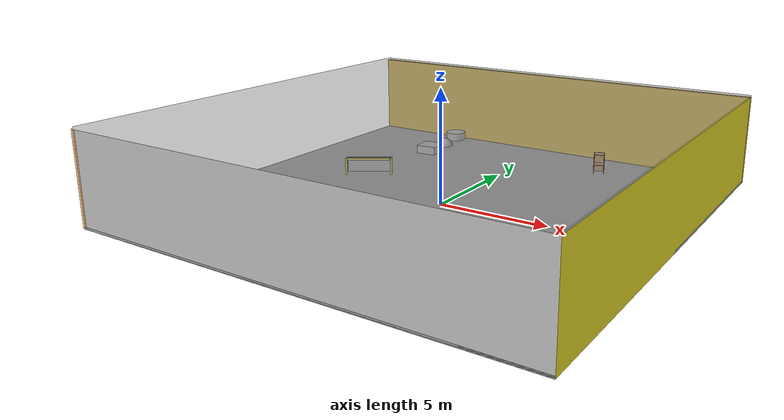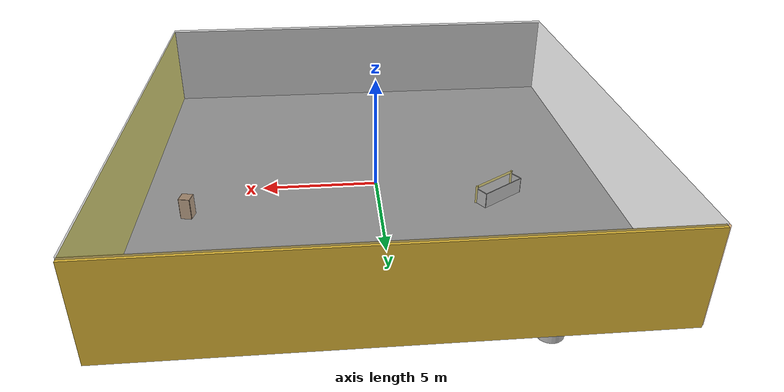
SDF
<sdf version="1.4">
 <world name="default">
  <physics type="ode">
   <max_step_size>0.001</max_step_size>
   <real_time_factor>1</real_time_factor>
   <real_time_update_rate>1000</real_time_update_rate>
   <gravity>0 0 -9.8</gravity>
  </physics>
  <scene><ambient>0.4 0.4 0.4 1</ambient><background>0.7 0.7 0.7 1</background><shadows>1</shadows></scene>
  <model name="Surrounding">
   <static>1</static>
   <link name="Ceiling">
    <collision name="Ceiling_Collision"><geometry><box><size>20 20 0.1</size></box></geometry></collision>
    <visual name="Ceiling_Visual">
     <geometry><box><size>20 20 0.1</size></box></geometry>
     <material>
      <script><uri>file://media/materials/scripts/gazebo.material</uri><name>Gazebo/GreyTransparent</name></script>
     </material>
    </visual>
    <pose>0 0 4.05 0 0 0</pose>
   </link>
   <link name="Wall_South">
    <collision name="Wall_South_Collision">
     <geometry><box><size>20 0 4</size></box></geometry>
     <pose>0 0 2 0 -0 0</pose>
    </collision>
    <visual name="Wall_South_Visual">
     <pose>0 0 2 0 -0 0</pose>
     <geometry><box><size>20 0 4</size></box></geometry>
     <material>
      <script><uri>file://media/materials/scripts/gazebo.material</uri><name>Gazebo/CloudySky</name></script>
     </material>
    </visual>
    <velocity_decay><linear>0</linear><angular>0</angular></velocity_decay>
    <pose>0 -10 0 0 -0 0</pose>
   </link>
   <link name="Wall_East">
    <collision name="Wall_21_Collision">
     <geometry><box><size>20 0 4</size></box></geometry>
     <pose>0 0 2 0 -0 0</pose>
    </collision>
    <visual name="Wall_21_Visual">
     <pose>0 0 2 0 -0 0</pose>
     <geometry><box><size>20 0 4</size></box></geometry>
     <material>
      <script><uri>file://media/materials/scripts/gazebo.material</uri><name>Gazebo/YellowGlow</name></script>
     </material>
    </visual>
    <velocity_decay><linear>0</linear><angular>0</angular></velocity_decay>
    <pose>10 0 0 0 -0 1.5708</pose>
   </link>
   <link name="Wall_North">
    <collision name="Wall_22_Collision">
     <geometry><box><size>20 0.2 4</size></box></geometry>
     <pose>0 0 2 0 -0 0</pose>
    </collision>
    <visual name="Wall_22_Visual">
     <pose>0 0 2 0 -0 0</pose>
     <geometry><box><size>20 0.2 4</size></box></geometry>
     <material>
      <script><uri>file://media/materials/scripts/gazebo.material</uri><name>Gazebo/Gold</name></script>
     </material>
    </visual>
    <velocity_decay><linear>0</linear><angular>0</angular></velocity_decay>
    <pose>0 10 0 0 -0 0</pose>
   </link>
   <link name="Wall_West">
    <collision name="Wall_23_Collision">
     <geometry><box><size>20 0.2 4</size></box></geometry>
     <pose>0 0 2 0 -0 0</pose>
    </collision>
    <visual name="Wall_23_Visual">
     <pose>0 0 2 0 -0 0</pose>
     <geometry><box><size>20 0.2 4</size></box></geometry>
     <material>
      <script>
       <uri>file://media/materials/scripts/gazebo.material</uri>
       <name>Gazebo/OrangeTransparent</name>
      </script>
     </material>
    </visual>
    <velocity_decay><linear>0</linear><angular>0</angular></velocity_decay>
    <pose>-10 0 0 0 0 -1.5708</pose>
   </link>
   <link name="Ground_link">
    <collision name="collision">
     <pose>0 0 .05 0 -0 0</pose>
     <geometry><box><size>20 20 0.1</size></box></geometry>
    </collision>
    <visual name="visual">
     <pose>0 0 .05 0 -0 0</pose>
     <geometry><box><size>20 20 0.1</size></box></geometry>
     <material>
      <script><uri>file://media/materials/scripts/gazebo.material</uri><name>Gazebo/GreyGradientSky</name></script>
     </material>
    </visual>
   </link>
   <static>1</static>
  </model>
  <spherical_coordinates>
   <surface_model>EARTH_WGS84</surface_model>
   <latitude_deg>0</latitude_deg>
   <longitude_deg>0</longitude_deg>
   <elevation>0</elevation>
   <heading_deg>0</heading_deg>
  </spherical_coordinates>
  <light name="lightball_0" type="diffuse">
   <diffuse>0.8 0.8 0.8 1</diffuse>
   <specular>0.2 0.2 0.2 1</specular>
   <attenuation>
    <range>100</range>
    <constant>0.7</constant>
    <linear>0.01</linear>
    <quadratic>0.001</quadratic>
   </attenuation>
   <direction>-0.5 0.1 -0.9</direction>
   <pose>-6.07783386596 0.713040252681 1.15726524368 0 0 0</pose>
  </light>
  <light name="lightball_1" type="diffuse">
   <diffuse>0.8 0.8 0.8 1</diffuse>
   <specular>0.2 0.2 0.2 1</specular>
   <attenuation>
    <range>100</range>
    <constant>0.7</constant>
    <linear>0.01</linear>
    <quadratic>0.001</quadratic>
   </attenuation>
   <direction>-0.5 0.1 -0.9</direction>
   <pose>-9.85723176167 1.44600548624 2.90204634628 0 0 0</pose>
  </light>
  <light name="lightball_2" type="diffuse">
   <diffuse>0.8 0.8 0.8 1</diffuse>
   <specular>0.2 0.2 0.2 1</specular>
   <attenuation>
    <range>100</range>
    <constant>0.7</constant>
    <linear>0.01</linear>
    <quadratic>0.001</quadratic>
   </attenuation>
   <direction>-0.5 0.1 -0.9</direction>
   <pose>-4.70688311385 0.0269891346056 2.39764762657 0 0 0</pose>
  </light>
  <light name="lightball_3" type="diffuse">
   <diffuse>0.8 0.8 0.8 1</diffuse>
   <specular>0.2 0.2 0.2 1</specular>
   <attenuation>
    <range>100</range>
    <constant>0.7</constant>
    <linear>0.01</linear>
    <quadratic>0.001</quadratic>
   </attenuation>
   <direction>-0.5 0.1 -0.9</direction>
   <pose>9.00623380972 3.32594332899 0.559342249133 0 0 0</pose>
  </light>
  <light name="lightball_4" type="diffuse">
   <diffuse>0.8 0.8 0.8 1</diffuse>
   <specular>0.2 0.2 0.2 1</specular>
   <attenuation>
    <range>100</range>
    <constant>0.7</constant>
    <linear>0.01</linear>
    <quadratic>0.001</quadratic>
   </attenuation>
   <direction>-0.5 0.1 -0.9</direction>
   <pose>-4.11912732595 3.62781061098 3.61622729481 0 0 0</pose>
  </light>
  <light name="lightball_5" type="diffuse">
   <diffuse>0.8 0.8 0.8 1</diffuse>
   <specular>0.2 0.2 0.2 1</specular>
   <attenuation>
    <range>100</range>
    <constant>0.7</constant>
    <linear>0.01</linear>
    <quadratic>0.001</quadratic>
   </attenuation>
   <direction>-0.5 0.1 -0.9</direction>
   <pose>-8.93071746967 -2.56230480779 3.63113765046 0 0 0</pose>
  </light>
  <include>
   <uri>model://robocup_3Dsim_goal</uri>
   <pose>-4.99891484836 1.49433540429 0 0 0 2.14495324938</pose>
  </include>
  <include>
   <uri>model://textured_shapes</uri>
   <pose>-4.95353453204 7.91686592366 0 0 0 0.0962297510749</pose>
  </include>
  <include><uri>model://cabinet</uri><pose>3.93952950868 7.69361109747 0 0 0 1.97087340214</pose></include>
  <include><uri>model://cabinet</uri><pose>7.9490081213 2.06576159318 0 0 0 1.35616242415</pose></include>
 </world>
</sdf>

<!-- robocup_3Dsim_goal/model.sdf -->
<sdf version="1.5">
  <model name="robocup_3d_goal">
    <static>true</static>
    <link name="left_post">
      <pose>0 1.05 0.45 0 0 0</pose>
      <collision name="collision">
        <geometry>
          <cylinder>
            <radius>0.05</radius>
            <length>0.9</length>
          </cylinder>
        </geometry>
      </collision>
      <visual name="visual">
        <geometry>
          <cylinder>
            <radius>0.05</radius>
            <length>0.9</length>
          </cylinder>
        </geometry>
        <material>
          <script>
            <uri>file://media/materials/scripts/gazebo.material</uri>
            <name>Gazebo/ZincYellow</name>
          </script>
        </material>
      </visual>
    </link>
    <link name="left_support_horiz_lower">
      <pose>0.30 1.05 0.01 0 0 0</pose>
      <collision name="collision">
        <geometry>
          <box>
            <size>0.50 0.02 0.02</size>
          </box>
        </geometry>
      </collision>
      <visual name="visual">
        <geometry>
          <box>
            <size>0.50 0.02 0.02</size>
          </box>
        </geometry>
        <material>
          <script>
            <uri>file://media/materials/scripts/gazebo.material</uri>
            <name>Gazebo/White</name>
          </script>
        </material>
      </visual>
    </link>
    <link name="left_support_horiz_upper">
      <pose>0.30 1.05 0.79 0 0 0</pose>
      <collision name="collision">
        <geometry>
          <box>
            <size>0.50 0.02 0.02</size>
          </box>
        </geometry>
      </collision>
      <visual name="visual">
        <geometry>
          <box>
            <size>0.50 0.02 0.02</size>
          </box>
        </geometry>
        <material>
          <script>
            <uri>file://media/materials/scripts/gazebo.material</uri>
            <name>Gazebo/White</name>
          </script>
        </material>
      </visual>
    </link>
    <link name="left_support_vertical">
      <pose>0.56 1.05 0.4 0 1.5708 0</pose>
      <collision name="collision">
        <geometry>
          <box>
            <size>0.80 0.02 0.02</size>
          </box>
        </geometry>
      </collision>
      <visual name="visual">
        <geometry>
          <box>
            <size>0.80 0.02 0.02</size>
          </box>
        </geometry>
        <material>
          <script>
            <uri>file://media/materials/scripts/gazebo.material</uri>
            <name>Gazebo/White</name>
          </script>
        </material>
      </visual>
    </link>
    <link name="right_support_horiz_lower">
      <pose>0.30 -1.05 0.01 0 0 0</pose>
      <collision name="collision">
        <geometry>
          <box>
            <size>0.50 0.02 0.02</size>
          </box>
        </geometry>
      </collision>
      <visual name="visual">
        <geometry>
          <box>
            <size>0.50 0.02 0.02</size>
          </box>
        </geometry>
        <material>
          <script>
            <uri>file://media/materials/scripts/gazebo.material</uri>
            <name>Gazebo/White</name>
          </script>
        </material>
      </visual>
    </link>
    <link name="right_support_horiz_upper">
      <pose>0.30 -1.05 0.79 0 0 0</pose>
      <collision name="collision">
        <geometry>
          <box>
            <size>0.50 0.02 0.02</size>
          </box>
        </geometry>
      </collision>
      <visual name="visual">
        <geometry>
          <box>
            <size>0.50 0.02 0.02</size>
          </box>
        </geometry>
        <material>
          <script>
            <uri>file://media/materials/scripts/gazebo.material</uri>
            <name>Gazebo/White</name>
          </script>
        </material>
      </visual>
    </link>
    <link name="right_support_vertical">
      <pose>0.56 -1.05 0.4 0 1.5708 0</pose>
      <collision name="collision">
        <geometry>
          <box>
            <size>0.80 0.02 0.02</size>
          </box>
        </geometry>
      </collision>
      <visual name="visual">
        <geometry>
          <box>
            <size>0.80 0.02 0.02</size>
          </box>
        </geometry>
        <material>
          <script>
            <uri>file://media/materials/scripts/gazebo.material</uri>
            <name>Gazebo/White</name>
          </script>
        </material>
      </visual>
    </link>
    <link name="center_support_horiz_lower">
      <pose>0.56 0 0.01 0 1.5708 0</pose>
      <collision name="collision">
        <geometry>
          <box>
            <size>0.02 2.08 0.02</size>
          </box>
        </geometry>
      </collision>
      <visual name="visual">
        <geometry>
          <box>
            <size>0.02 2.08 0.02</size>
          </box>
        </geometry>
        <material>
          <script>
            <uri>file://media/materials/scripts/gazebo.material</uri>
            <name>Gazebo/White</name>
          </script>
        </material>
      </visual>
    </link>
    <link name="center_support_horiz_upper">
      <pose>0.56 0 0.79 0 1.5708 0</pose>
      <collision name="collision">
        <geometry>
          <box>
            <size>0.02 2.08 0.02</size>
          </box>
        </geometry>
      </collision>
      <visual name="visual">
        <geometry>
          <box>
            <size>0.02 2.08 0.02</size>
          </box>
        </geometry>
        <material>
          <script>
            <uri>file://media/materials/scripts/gazebo.material</uri>
            <name>Gazebo/White</name>
          </script>
        </material>
      </visual>
    </link>
    <link name="right_post">
      <pose>0 -1.05 0.45 0 0 0</pose>
      <collision name="collision">
        <geometry>
          <cylinder>
            <radius>0.05</radius>
            <length>0.9</length>
          </cylinder>
        </geometry>
      </collision>
      <visual name="visual">
        <geometry>
          <cylinder>
            <radius>0.05</radius>
            <length>0.9</length>
          </cylinder>
        </geometry>
        <material>
          <script>
            <uri>file://media/materials/scripts/gazebo.material</uri>
            <name>Gazebo/ZincYellow</name>
          </script>
        </material>
      </visual>
    </link>
    <link name="crossbar">
      <pose>0 0 0.85 1.57 1.57 0</pose>
      <collision name="collision">
        <geometry>
          <cylinder>
            <radius>0.05</radius>
            <length>2.0</length>
          </cylinder>
        </geometry>
      </collision>
      <visual name="visual">
        <geometry>
          <cylinder>
            <radius>0.05</radius>
            <length>2.0</length>
          </cylinder>
        </geometry>
        <material>
          <script>
            <uri>file://media/materials/scripts/gazebo.material</uri>
            <name>Gazebo/ZincYellow</name>
          </script>
        </material>
      </visual>
    </link>
    <link name="center_net">
      <pose>0.56 0 0.40 0 0 0</pose>
      <collision name="collision">
        <geometry>
          <box>
            <size>0.01 2.1 0.80</size>
          </box>
        </geometry>
      </collision>
      <visual name="visual">
        <geometry>
          <box>
            <size>0.01 2.1 0.80</size>
          </box>
        </geometry>
        <material>
          <script>
            <uri>model://../model_source/models/robocup09_spl_field/materials/scripts/</uri>
            <uri>model://../model_source/models/robocup09_spl_field/materials/textures/</uri>
            <name>RoboCup/Net</name>
          </script>
        </material>
      </visual>
    </link>
    <link name="left_net">
      <pose>0.30 1.05 0.40 0 0 0</pose>
      <collision name="collision">
        <geometry>
          <box>
            <size>0.50 0.01 0.76</size>
          </box>
        </geometry>
      </collision>
      <visual name="visual">
        <geometry>
          <box>
            <size>0.50 0.01 0.76</size>
          </box>
        </geometry>
        <material>
          <script>
            <uri>model://../model_source/models/robocup09_spl_field/materials/scripts/</uri>
            <uri>model://../model_source/models/robocup09_spl_field/materials/textures/</uri>
            <name>RoboCup/Net</name>
          </script>
        </material>
      </visual>
    </link>
    <link name="right_net">
      <pose>0.30 -1.05 0.40 0 0 0</pose>
      <collision name="collision">
        <geometry>
          <box>
            <size>0.50 0.01 0.76</size>
          </box>
        </geometry>
      </collision>
      <visual name="visual">
        <geometry>
          <box>
            <size>0.50 0.01 0.76</size>
          </box>
        </geometry>
        <material>
          <script>
            <uri>model://../model_source/models/robocup09_spl_field/materials/scripts/</uri>
            <uri>model://../model_source/models/robocup09_spl_field/materials/textures/</uri>
            <name>RoboCup/Net</name>
          </script>
        </material>
      </visual>
    </link>
  </model>
</sdf>

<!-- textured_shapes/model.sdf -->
<sdf version="1.6">
  <model name="textured_shapes">
    <pose>0 0 0.5 0 0 0</pose>
    <link name="box">
      <pose>0 -1.5 0 0 0 0</pose>
      <collision name="collision">
        <geometry>
          <box>
            <size>1 1 1</size>
          </box>
        </geometry>
      </collision>
      <visual name="visual">
        <geometry>
          <box>
            <size>1 1 1</size>
          </box>
        </geometry>
        <material>
          <script>
            <uri>model://../model_source/models/textured_shapes/materials/scripts</uri>
            <uri>model://../model_source/models/textured_shapes/materials/textures</uri>
            <name>TexturedShape/Squares</name>
          </script>
        </material>
      </visual>
    </link>
    <link name="sphere">
      <collision name="collision">
        <geometry>
          <sphere>
            <radius>0.5</radius>
          </sphere>
        </geometry>
      </collision>
      <visual name="visual">
        <geometry>
          <sphere>
            <radius>0.5</radius>
          </sphere>
        </geometry>
        <material>
          <script>
            <uri>model://../model_source/models/textured_shapes/materials/scripts</uri>
            <uri>model://../model_source/models/textured_shapes/materials/textures</uri>
            <name>TexturedShape/Squares</name>
          </script>
        </material>
      </visual>
    </link>
    <link name="cylinder">
      <pose>0 1.5 0 0 0 0</pose>
      <collision name="collision">
        <geometry>
          <cylinder>
            <radius>0.5</radius>
            <length>1</length>
          </cylinder>
        </geometry>
      </collision>
      <visual name="visual">
        <geometry>
          <cylinder>
            <radius>0.5</radius>
            <length>1</length>
          </cylinder>
        </geometry>
        <material>
          <script>
            <uri>model://../model_source/models/textured_shapes/materials/scripts</uri>
            <uri>model://../model_source/models/textured_shapes/materials/textures</uri>
            <name>TexturedShape/Squares</name>
          </script>
        </material>
      </visual>
    </link>
  </model>
</sdf>

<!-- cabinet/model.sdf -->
<sdf version="1.5">
  <model name="cabinet">
    <static>true</static>
    <link name="cabinet_bottom_plate">
      <inertial>
        <pose>0 0 -1 0 0 0</pose>
        <inertia>
          <ixx>2.050000</ixx>
          <ixy>0</ixy>
          <ixz>0</ixz>
          <iyy>2.050000</iyy>
          <iyz>0</iyz>
          <izz>2.050000</izz>
        </inertia>
        <mass>25.000000</mass>
      </inertial>
      <collision name="cabinet_bottom_plate_geom">
        <pose>0 0 0.010000 0 0 0</pose>
        <geometry>
          <box>
            <size>0.450000 0.450000 0.020000</size>
          </box>
        </geometry>
      </collision>
      <visual name="cabinet_bottom_plate_geom_visual">
        <pose>0 0 0.010000 0 0 0</pose>
        <geometry>
          <box>
            <size>0.450000 0.450000 0.020000</size>
          </box>
        </geometry>
        <material>
          <script>
            <uri>model://media/materials/scripts/gazebo.material</uri>
            <name>Gazebo/Wood</name>
          </script>
        </material>
      </visual>
      <collision name="cabinet_bottom_plate_geom_cabinet_back_plate">
        <pose>0.235000 0 0.510000 0 0 0</pose>
        <geometry>
          <box>
            <size>0.020000 0.450000 1.020000</size>
          </box>
        </geometry>
      </collision>
      <visual name="cabinet_bottom_plate_geom_cabinet_back_plate_visual">
        <pose>0.235000 0 0.510000 0 0 0</pose>
        <geometry>
          <box>
            <size>0.020000 0.450000 1.020000</size>
          </box>
        </geometry>
        <material>
          <script>
            <uri>model://media/materials/scripts/gazebo.material</uri>
            <name>Gazebo/Wood</name>
          </script>
        </material>
      </visual>
      <collision name="cabinet_bottom_plate_geom_cabinet_left_plate">
        <pose>0 0.235000 0.510000 0 0 0</pose>
        <geometry>
          <box>
            <size>0.450000 0.020000 1.020000</size>
          </box>
        </geometry>
      </collision>
      <visual name="cabinet_bottom_plate_geom_cabinet_left_plate_visual">
        <pose>0 0.235000 0.510000 0 0 0</pose>
        <geometry>
          <box>
            <size>0.450000 0.020000 1.020000</size>
          </box>
        </geometry>
        <material>
          <script>
            <uri>model://media/materials/scripts/gazebo.material</uri>
            <name>Gazebo/Wood</name>
          </script>
        </material>
      </visual>
      <collision name="cabinet_bottom_plate_geom_cabinet_middle_plate">
        <pose>0 0 0.510000 0 0 0</pose>
        <geometry>
          <box>
            <size>0.450000 0.450000 0.020000</size>
          </box>
        </geometry>
      </collision>
      <visual name="cabinet_bottom_plate_geom_cabinet_middle_plate_visual">
        <pose>0 0 0.510000 0 0 0</pose>
        <geometry>
          <box>
            <size>0.450000 0.450000 0.020000</size>
          </box>
        </geometry>
        <material>
          <script>
            <uri>model://media/materials/scripts/gazebo.material</uri>
            <name>Gazebo/Wood</name>
          </script>
        </material>
      </visual>
      <collision name="cabinet_bottom_plate_geom_cabinet_right_plate">
        <pose>0 -0.235000 0.510000 0 0 0</pose>
        <geometry>
          <box>
            <size>0.450000 0.020000 1.020000</size>
          </box>
        </geometry>
      </collision>
      <visual name="cabinet_bottom_plate_geom_cabinet_right_plate_visual">
        <pose>0 -0.235000 0.510000 0 0 0</pose>
        <geometry>
          <box>
            <size>0.450000 0.020000 1.020000</size>
          </box>
        </geometry>
        <material>
          <script>
            <uri>model://media/materials/scripts/gazebo.material</uri>
            <name>Gazebo/Wood</name>
          </script>
        </material>
      </visual>
      <collision name="cabinet_bottom_plate_geom_cabinet_top_plate">
        <pose>0 0 1.010000 0 0 0</pose>
        <geometry>
          <box>
            <size>0.450000 0.450000 0.020000</size>
          </box>
        </geometry>
      </collision>
      <visual name="cabinet_bottom_plate_geom_cabinet_top_plate_visual">
        <pose>0 0 1.010000 0 0 0</pose>
        <geometry>
          <box>
            <size>0.450000 0.450000 0.020000</size>
          </box>
        </geometry>
        <material>
          <script>
            <uri>model://media/materials/scripts/gazebo.material</uri>
            <name>Gazebo/Wood</name>
          </script>
        </material>
      </visual>
    </link>
  </model>
</sdf>
